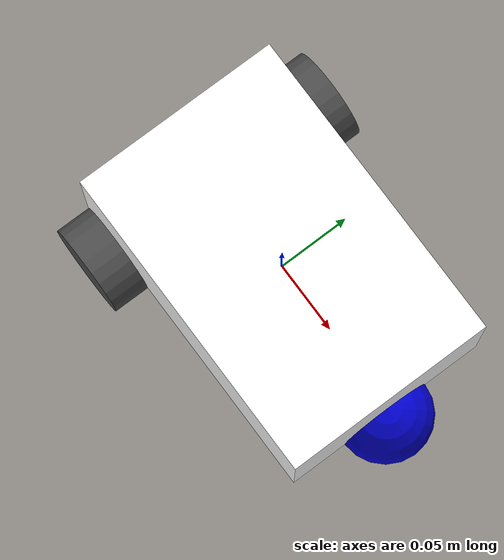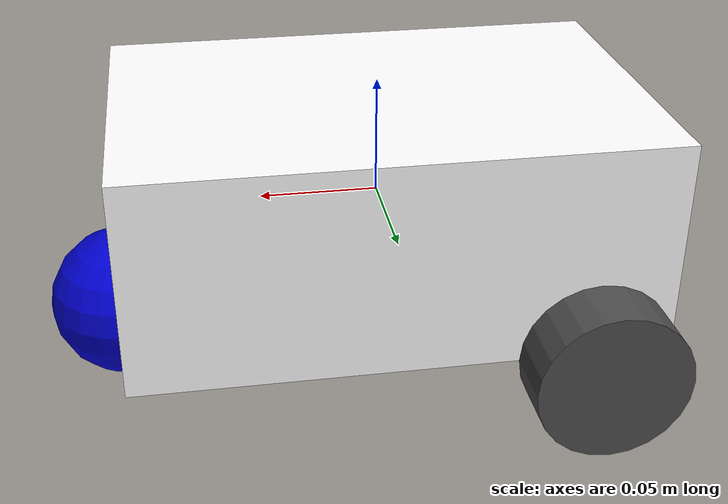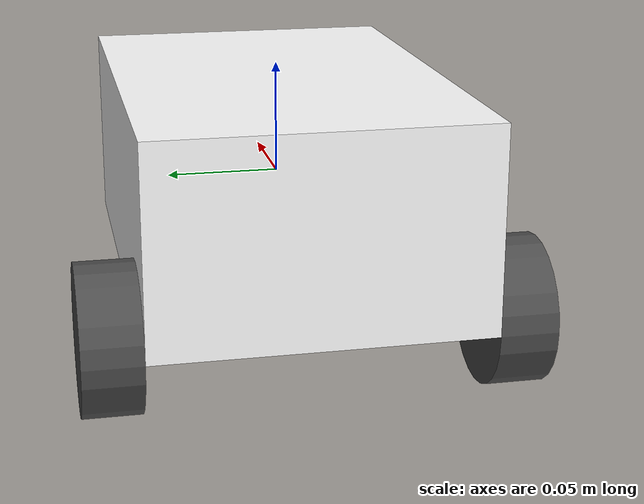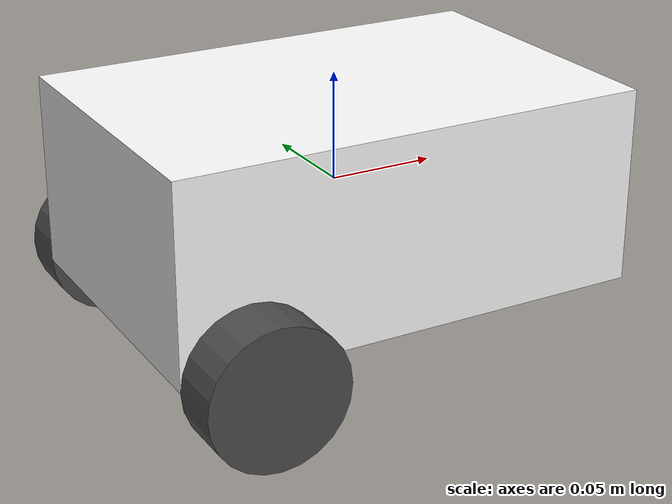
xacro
<?xml version="1.0"?>
<robot name="fourWD" xmlns:xacro="http://www.ros.org/wiki/xacro">

<xacro:arg name="robot_namespace" default=""/>

	<xacro:arg name="with_cam" default="false"/>
	<xacro:arg name="with_fisheyes" default="false"/>
	<xacro:arg name="with_ydlidar" default="false"/>

	<xacro:arg name="cam_x" default="0"/>
	<xacro:arg name="cam_y" default="0"/>
	<xacro:arg name="cam_z" default="0"/>
	<xacro:arg name="cam_roll" default="0"/>
	<xacro:arg name="cam_pitch" default="0"/>
	<xacro:arg name="cam_yaw" default="0"/>
	<xacro:arg name="cam_W" default="320"/>
	<xacro:arg name="cam_H" default="240"/>
	<xacro:arg name="cam_focal" default="3.6"/>
	<xacro:arg name="cam_hfov" default="1.3"/>

	<xacro:arg name="yl_x" default="0"/>
	<xacro:arg name="yl_y" default="0"/>
	<xacro:arg name="yl_roll" default="0"/>
	<xacro:arg name="yl_pitch" default="0"/>
	<xacro:arg name="yl_yaw" default="0"/>
	<xacro:arg name="yl_samples" default="7"/>
	<xacro:arg name="yl_visualize" default="true"/>
	<xacro:arg name="yl_update_rate" default="8.3"/>
	<xacro:arg name="yl_min_angle" default="-0.3"/>
	<xacro:arg name="yl_max_angle" default="0.3"/>
	<xacro:arg name="yl_max_range" default="2.0"/>

  <xacro:include filename="$(find lp_neural_swarm)/urdf/differential_drive_base.urdf.xacro"/>
  <xacro:include filename="$(find lp_neural_swarm)/urdf/fisheyes.urdf.xacro"/>
  <xacro:include filename="$(find lp_neural_swarm)/urdf/ydlidar.urdf.xacro"/>
  <xacro:include filename="$(find lp_neural_swarm)/urdf/cam.urdf.xacro"/>

<!-- Defining the colors used in this robot -->
  <material name="Black">
    <color rgba="0.0 0.0 0.0 1.0"/>
  </material>

  <material name="Red">
    <color rgba="1.0 0.0 0.0 1.0"/>
  </material>

  <material name="White">
    <color rgba="1.0 1.0 1.0 1.0"/>
  </material>

  <material name="Yellow">
    <color rgba="0.0 1.0 1.0 1.0"/>
  </material>

  <material name="Blue">
    <color rgba="0.0 0.0 0.8 1.0"/>
  </material>

  <!-- PROPERTY LIST -->
  <!--All units in m-kg-s-radians unit system -->
  <xacro:property name="M_PI" value="3.1415926535897931"/>
  <xacro:property name="M_PI_2" value="1.570796327"/>
  <xacro:property name="M_PI_4" value="0.78539816339"/>
  <xacro:property name="DEG_TO_RAD" value="0.017453293"/>

  <!-- Main body length, width and height -->
  <!-- Main Body Box base   -->
  <xacro:property name="base_length" value="0.22"/>
  <xacro:property name="base_width" value="0.145"/>
  <xacro:property name="base_height" value="0.09"/>
  <xacro:property name="base_mass" value="0.7"/> <!-- in kg-->

  <!-- Wheels -->
  <xacro:property name="wheel_radius" value="0.032"/>
  <xacro:property name="wheel_height" value="0.025"/>
  <xacro:property name="wheel_mass" value="0.03"/> <!-- in kg-->

  <!-- here starts the real definition of the robot -->
	<xacro:differential_drive_base
	  robot_namespace=""
    base_link="base_link"
    base_length="${base_length}"
    base_width="${base_width}"
    base_height="${base_height}"
    base_mass="${base_mass}"
    wheel_radius="${wheel_radius}"
    wheel_height="${wheel_height}"
    wheel_mass="${wheel_mass}"
 />

	<xacro:if value="$(arg with_fisheyes)">
		<xacro:fisheyes parent="base_link" x="0" y="0" z="${base_height/2}" roll="0" pitch="0" yaw="0"/>
	</xacro:if>

	<xacro:if value="$(arg with_ydlidar)">
		<xacro:ydlidar parent="base_link"
			x="$(arg yl_x)"
			y="$(arg yl_y)"
			z="${base_height/2}"
			roll="$(arg yl_roll)"
			pitch="$(arg yl_pitch)"
			yaw="$(arg yl_yaw)"
			samples="$(arg yl_samples)"
			visualize="$(arg yl_visualize)"
			update_rate="$(arg yl_update_rate)"
			min_angle="$(arg yl_min_angle)"
			max_angle="$(arg yl_max_angle)"
			max_range="$(arg yl_max_range)"/>
	</xacro:if>

	<xacro:if value="$(arg with_cam)">
		<xacro:cam parent="base_link"
			x="$(arg cam_x)"
			y="$(arg cam_y)"
			z="${$(arg cam_z)+base_height/2}"
			roll="$(arg cam_roll)"
			pitch="$(arg cam_pitch)"
			yaw="$(arg cam_yaw)"
			W="$(arg cam_W)"
			H="$(arg cam_H)"
			hfov="$(arg cam_hfov)"
			focal="$(arg cam_focal)"/>

	</xacro:if>

</robot>

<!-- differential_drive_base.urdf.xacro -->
<robot name="differential_drive_base" xmlns:xacro="http://www.ros.org/wiki/xacro">

  <xacro:property name="cam_side" value="0.03" />

  <xacro:property name="M_PI" value="3.1415926535897931" />
  <xacro:property name="M_PI_2" value="1.570796327" />
  <xacro:property name="M_PI_4" value="0.78539816339" />

  <!-- Macro for calculating inertia of cylinder -->
  <xacro:macro name="cylinder_inertia" params="m r h">
    <inertia  ixx="${m*(3*r*r+h*h)/12}" ixy = "0" ixz = "0"
              iyy="${m*(3*r*r+h*h)/12}" iyz = "0"
              izz="${m*r*r/2}" />
  </xacro:macro>

<!-- Macro for calculating inertia of box -->
  <xacro:macro name="box_inertia" params="m l w h">
    <inertia  ixx="${m*(w*w+h*h)/12}" ixy = "0" ixz = "0"
              iyy="${m*(l*l+h*h)/12}" iyz = "0"
              izz="${m*(l*l+w*w)/12}" />
  </xacro:macro>

  <xacro:macro name="differential_drive_base" params="robot_namespace  base_link base_length base_width base_height base_mass wheel_height wheel_radius wheel_mass">

  <!-- BASE-LINK -->
  <!--Actual body/chassis of the robot-->
  <link name="${base_link}">
    <inertial>
      <mass value="${base_mass}" />
      <origin xyz="0 0 0" />
      <!--The 3x3 rotational inertia matrix. -->
        <xacro:box_inertia  m="${base_mass}" l="${base_length}" w="${base_width}" h="${base_height}" />

    </inertial>
    <visual>
      <origin xyz="0 0 0" rpy="0 0 0" />
      <geometry>
         <box size="${base_length} ${base_width} ${base_height}"/>
      </geometry>
      <material name="White" />
    </visual>
    <collision>
      <origin xyz="0 0 0" rpy="0 0 0 " />
      <geometry>
         <box size="${base_length} ${base_width} ${base_height}"/>
      </geometry>
    </collision>
  </link>
  <gazebo reference="${base_link}">
    <material>Gazebo/White</material>
    <turnGravityOff>false</turnGravityOff>
  </gazebo>

  <!-- caster wheel -->
  <link name="caster_link">
    <collision>
      <origin xyz="0 0 0" rpy="0 0 0"/>
      <geometry>
        <sphere radius="0.032"/>
      </geometry>
    </collision>
    <visual>
      <origin xyz="0 0 0" rpy="0 0 0" />
      <geometry>
        <sphere radius="0.032"/>
      </geometry>
      <material name="Blue" />
    </visual>
  </link>

  <gazebo reference="caster_link">
      <mu1 value="0.0"/>
      <mu2 value="0.0"/>
    <material>Gazebo/Blue</material>
    <turnGravityOff>false</turnGravityOff>
  </gazebo>

  <joint name="caster_joint" type="fixed">
    <origin xyz="${base_length/2} 0 ${-base_height/2}" rpy="0 0 0" />
    <parent link="${base_link}"/>
    <child link="caster_link" />
  </joint>

  <!-- RIGHT WHEEL -->
  <link name="back_right_wheel">
    <visual>
      <origin xyz="0 0 0" rpy="0 ${M_PI/2} ${M_PI/2}" />
      <geometry>
        <cylinder length="${wheel_height}" radius="${wheel_radius}" />
      </geometry>
      <material name="DarkGray" />
    </visual>
    <collision>
      <origin xyz="0 0 0" rpy="0 ${M_PI/2} ${M_PI/2}" />
      <geometry>
        <cylinder length="${wheel_height}" radius="${wheel_radius}" />
      </geometry>
    </collision>
    <inertial>
      <mass value="${wheel_mass}" />
      <origin xyz="0 0 0" rpy="0 ${M_PI/2} ${M_PI/2}" />
      <xacro:cylinder_inertia  m="${wheel_mass}" r="${wheel_radius}" h="${wheel_height}" />
       <inertia ixx="8.7002718e-03" ixy="-4.7576583e-05" ixz="1.1160499e-04"
                    iyy="8.6195418e-03" iyz="-3.5422299e-06"
                    izz="1.4612727e-02" />
    </inertial>
  </link>

  <gazebo reference="back_right_wheel">
    <mu1 value="1.0"/>
    <mu2 value="1.0"/>
    <material>Gazebo/Grey</material>
    <turnGravityOff>false</turnGravityOff>
  </gazebo>

  <joint name="back_right_wheel_joint" type="continuous">
    <parent link="${base_link}"/>
    <child link="back_right_wheel"/>
    <origin xyz="${-base_length/2+wheel_radius} ${-base_width/2-wheel_height/2} ${-base_height/2}" rpy="0 0 0" />
    <axis xyz="0 1 0" rpy="0 0 0" />
    <limit effort="1000" velocity="1000"/>
    <joint_properties damping="0.0" friction="0.0"/>
  </joint>

  <!-- LEFT WHEEL -->
  <link name="back_left_wheel">
    <visual>
      <origin xyz="0 0 0" rpy="0 ${M_PI/2} ${M_PI/2}" />
      <geometry>
        <cylinder length="${wheel_height}" radius="${wheel_radius}" />
      </geometry>
      <material name="DarkGray" />
    </visual>
    <collision>
      <origin xyz="0 0 0" rpy="0 ${M_PI/2} ${M_PI/2}" />
      <geometry>
        <cylinder length="${wheel_height}" radius="${wheel_radius}" />
      </geometry>
    </collision>
    <inertial>
      <mass value="${wheel_mass}" />
      <origin xyz="0 0 0" rpy="0 ${M_PI/2} ${M_PI/2}" />
      <xacro:cylinder_inertia  m="${wheel_mass}" r="${wheel_radius}" h="${wheel_height}" />
    </inertial>
  </link>

  <gazebo reference="back_left_wheel">
    <mu1 value="1.0"/>
    <mu2 value="1.0"/>
    <material>Gazebo/Grey</material>
    <turnGravityOff>false</turnGravityOff>
  </gazebo>

  <joint name="back_left_wheel_joint" type="continuous">
    <parent link="${base_link}"/>
    <child link="back_left_wheel"/>
    <origin xyz="${-base_length/2+wheel_radius} ${base_width/2+wheel_height/2} ${-base_height/2}" rpy="0 0 0" />
    <axis xyz="0 1 0" rpy="0 0 0" />
    <limit effort="100" velocity="100"/>
    <joint_properties damping="0.0" friction="0.0"/>
  </joint>

<gazebo>

  <!-- differential drive controller (for two wheels) -->
  <plugin name="differential_drive_controller" filename="libgazebo_ros_diff_drive.so">
    <robotNamespace>${robot_namespace}</robotNamespace>
    <updateRate>30</updateRate>
    <left_joint>back_left_wheel_joint</left_joint>
    <right_joint>back_right_wheel_joint</right_joint>
    <wheel_separation>0.35</wheel_separation>
    <wheel_diameter>0.1</wheel_diameter>
    <wheelAcceleration>1.8</wheelAcceleration>
    <wheelTorque>200</wheelTorque>
    <commandTopic>cmd_vel</commandTopic>
    <odometryTopic>odom</odometryTopic>
    <odometry_frame>odom</odometry_frame>
            <robot_base_frame>base_link</robot_base_frame>
    <!-- Odometry source, 0 for ENCODER, 1 for WORLD, defaults to WORLD -->
    <odometrySource>world</odometrySource>
    <publishWheelTF>false</publishWheelTF>

            <publish_odom>true</publish_odom>
            <publish_odom_tf>true</publish_odom_tf>
            <publish_wheel_tf>true</publish_wheel_tf>
    <publishTF>false</publishTF>
    <publishWheelJointState>false</publishWheelJointState>
    <legacyMode>false</legacyMode>
    <robotBaseFrame>base_footprint</robotBaseFrame>
    <rosDebugLevel>na</rosDebugLevel>

   </plugin>

 </gazebo>

 </xacro:macro>
</robot>
